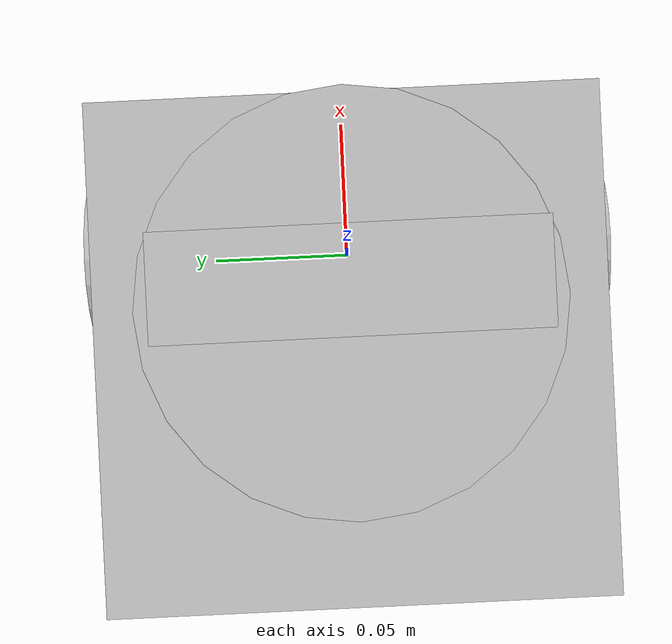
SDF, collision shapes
<?xml version='1.0'?>
<sdf version='1.7'>
  <model name='turtlebot3_realsense'>
    <link name='realsense2_camera_base_link'>
      <inertial>
        <pose>0.0106 0.0175 0.0125 0 -0 0</pose>
        <mass>0.072</mass>
        <inertia>
          <ixx>0.00388124</ixx>
          <ixy>0</ixy>
          <ixz>0</ixz>
          <iyy>0.00049894</iyy>
          <iyz>0</iyz>
          <izz>0.00387926</izz>
        </inertia>
      </inertial>
      <self_collide>0</self_collide>
      <enable_wind>0</enable_wind>
      <kinematic>0</kinematic>
      <sensor name='cameradepth' type='depth'>
        <camera name='camera'>
          <horizontal_fov>1.57</horizontal_fov>
          <image>
            <width>1280</width>
            <height>720</height>
          </image>
          <clip>
            <near>0.1</near>
            <far>100</far>
          </clip>
          <noise>
            <type>gaussian</type>
            <mean>0</mean>
            <stddev>0.1</stddev>
          </noise>
        </camera>
        <always_on>1</always_on>
        <update_rate>30</update_rate>
        <visualize>0</visualize>
      </sensor>
      <sensor name='cameracolor' type='camera'>
        <camera name='camera'>
          <horizontal_fov>1.57</horizontal_fov>
          <image>
            <width>1280</width>
            <height>720</height>
            <format>RGB_INT8</format>
          </image>
          <clip>
            <near>0.1</near>
            <far>100</far>
          </clip>
          <noise>
            <type>gaussian</type>
            <mean>0</mean>
            <stddev>0.007</stddev>
          </noise>
        </camera>
        <always_on>1</always_on>
        <update_rate>30</update_rate>
        <visualize>1</visualize>
      </sensor>
      <sensor name='cameraired1' type='camera'>
        <camera name='camera'>
          <horizontal_fov>1.57</horizontal_fov>
          <image>
            <width>1280</width>
            <height>720</height>
            <format>L_INT8</format>
          </image>
          <clip>
            <near>0.1</near>
            <far>100</far>
          </clip>
          <noise>
            <type>gaussian</type>
            <mean>0</mean>
            <stddev>0.05</stddev>
          </noise>
        </camera>
        <always_on>1</always_on>
        <update_rate>1</update_rate>
        <visualize>0</visualize>
      </sensor>
      <sensor name='cameraired2' type='camera'>
        <camera name='camera'>
          <horizontal_fov>1.57</horizontal_fov>
          <image>
            <width>1280</width>
            <height>720</height>
            <format>L_INT8</format>
          </image>
          <clip>
            <near>0.1</near>
            <far>100</far>
          </clip>
          <noise>
            <type>gaussian</type>
            <mean>0</mean>
            <stddev>0.05</stddev>
          </noise>
        </camera>
        <always_on>1</always_on>
        <update_rate>1</update_rate>
        <visualize>0</visualize>
      </sensor>
      <pose>-0.025589 -0 0.179177 -0 -0 -0</pose>
      <visual name='base_link_fixed_joint_lump__camera_link_visual'>
        <pose>0.0106 0 0.0125 0 -0 0</pose>
        <geometry>
          <box>
            <size>0.02505 0.09 0.025</size>
          </box>
        </geometry>
        <material>
          <shader type='pixel'/>
        </material>
        <transparency>0</transparency>
        <cast_shadows>1</cast_shadows>
      </visual>
      <collision name='base_link_fixed_joint_lump__camera_link_collision'>
        <laser_retro>0</laser_retro>
        <max_contacts>10</max_contacts>
        <pose>0.0106 0 0.0125 0 -0 0</pose>
        <geometry>
          <box>
            <size>0.02505 0.09 0.025</size>
          </box>
        </geometry>
        <surface>
          <friction>
            <ode>
              <mu>1</mu>
              <mu2>1</mu2>
              <fdir1>0 0 0</fdir1>
              <slip1>0</slip1>
              <slip2>0</slip2>
            </ode>
            <torsional>
              <coefficient>1</coefficient>
              <patch_radius>0</patch_radius>
              <surface_radius>0</surface_radius>
              <use_patch_radius>1</use_patch_radius>
              <ode>
                <slip>0</slip>
              </ode>
            </torsional>
          </friction>
          <bounce>
            <restitution_coefficient>0</restitution_coefficient>
            <threshold>1e+06</threshold>
          </bounce>
          <contact>
            <collide_without_contact>0</collide_without_contact>
            <collide_without_contact_bitmask>1</collide_without_contact_bitmask>
            <collide_bitmask>1</collide_bitmask>
            <ode>
              <soft_cfm>0</soft_cfm>
              <soft_erp>0.2</soft_erp>
              <kp>1e+13</kp>
              <kd>1</kd>
              <max_vel>0.01</max_vel>
              <min_depth>0</min_depth>
            </ode>
            <bullet>
              <split_impulse>1</split_impulse>
              <split_impulse_penetration_threshold>-0.01</split_impulse_penetration_threshold>
              <soft_cfm>0</soft_cfm>
              <soft_erp>0.2</soft_erp>
              <kp>1e+13</kp>
              <kd>1</kd>
            </bullet>
          </contact>
        </surface>
      </collision>
    </link>
    <link name='base_footprint'>
      <self_collide>0</self_collide>
      <inertial>
        <pose>0 0 0 0 -0 0</pose>
        <inertia>
          <ixx>1</ixx>
          <ixy>0</ixy>
          <ixz>0</ixz>
          <iyy>1</iyy>
          <iyz>0</iyz>
          <izz>1</izz>
        </inertia>
        <mass>1</mass>
      </inertial>
      <enable_wind>0</enable_wind>
      <kinematic>0</kinematic>
      <pose>0 0 0 -0 -0 -0</pose>
    </link>
    <link name='base_link'>
      <inertial>
        <pose>-0.032 0 0.07 0 -0 0</pose>
        <inertia>
          <ixx>0.723974</ixx>
          <ixy>4.6864e-10</ixy>
          <ixz>-1.09526e-08</ixz>
          <iyy>0.723974</iyy>
          <iyz>2.85826e-09</iyz>
          <izz>0.65305</izz>
        </inertia>
        <mass>0.825735</mass>
      </inertial>
      <self_collide>0</self_collide>
      <enable_wind>0</enable_wind>
      <kinematic>0</kinematic>
      <pose>0 0 0 -0 -0 -0</pose>
      <visual name='base_visual'>
        <pose>-0.032 0 0 0 -0 0</pose>
        <geometry>
          <mesh>
            <uri>model://turtlebot3_burger/meshes/burger_base.dae</uri>
            <scale>0.001 0.001 0.001</scale>
          </mesh>
        </geometry>
        <material>
          <shader type='pixel'/>
        </material>
        <transparency>0</transparency>
        <cast_shadows>1</cast_shadows>
      </visual>
      <collision name='base_collision'>
        <laser_retro>0</laser_retro>
        <max_contacts>10</max_contacts>
        <pose>-0.032 0 0.07 0 -0 0</pose>
        <geometry>
          <box>
            <size>0.14 0.14 0.14</size>
          </box>
        </geometry>
        <surface>
          <friction>
            <ode>
              <mu>1</mu>
              <mu2>1</mu2>
              <fdir1>0 0 0</fdir1>
              <slip1>0</slip1>
              <slip2>0</slip2>
            </ode>
            <torsional>
              <coefficient>1</coefficient>
              <patch_radius>0</patch_radius>
              <surface_radius>0</surface_radius>
              <use_patch_radius>1</use_patch_radius>
              <ode>
                <slip>0</slip>
              </ode>
            </torsional>
          </friction>
          <bounce>
            <restitution_coefficient>0</restitution_coefficient>
            <threshold>1e+06</threshold>
          </bounce>
          <contact>
            <collide_without_contact>0</collide_without_contact>
            <collide_without_contact_bitmask>1</collide_without_contact_bitmask>
            <collide_bitmask>1</collide_bitmask>
            <ode>
              <soft_cfm>0</soft_cfm>
              <soft_erp>0.2</soft_erp>
              <kp>1e+13</kp>
              <kd>1</kd>
              <max_vel>0.01</max_vel>
              <min_depth>0</min_depth>
            </ode>
            <bullet>
              <split_impulse>1</split_impulse>
              <split_impulse_penetration_threshold>-0.01</split_impulse_penetration_threshold>
              <soft_cfm>0</soft_cfm>
              <soft_erp>0.2</soft_erp>
              <kp>1e+13</kp>
              <kd>1</kd>
            </bullet>
          </contact>
        </surface>
      </collision>
    </link>
    <link name='base_scan'>
      <inertial>
        <pose>-0.02 0 0.161 0 -0 0</pose>
        <inertia>
          <ixx>0.001</ixx>
          <ixy>0</ixy>
          <ixz>0</ixz>
          <iyy>0.001</iyy>
          <iyz>0</iyz>
          <izz>0.001</izz>
        </inertia>
        <mass>0.114</mass>
      </inertial>
      <sensor name='hls_lfcd_lds' type='ray'>
        <always_on>1</always_on>
        <visualize>1</visualize>
        <pose>-0.032 0 0.171 0 -0 0</pose>
        <update_rate>5</update_rate>
        <ray>
          <scan>
            <horizontal>
              <samples>360</samples>
              <resolution>1</resolution>
              <min_angle>0</min_angle>
              <max_angle>6.28</max_angle>
            </horizontal>
            <vertical>
              <samples>1</samples>
              <min_angle>0</min_angle>
              <max_angle>0</max_angle>
            </vertical>
          </scan>
          <range>
            <min>0.12</min>
            <max>3.5</max>
            <resolution>0.015</resolution>
          </range>
          <noise>
            <type>gaussian</type>
            <mean>0</mean>
            <stddev>0.01</stddev>
          </noise>
        </ray>
        <plugin name='turtlebot3_laserscan' filename='libgazebo_ros_ray_sensor.so'>
          <ros>
            <remapping>~/out:=scan</remapping>
          </ros>
          <output_type>sensor_msgs/LaserScan</output_type>
          <frame_name>base_scan</frame_name>
        </plugin>
      </sensor>
      <self_collide>0</self_collide>
      <enable_wind>0</enable_wind>
      <kinematic>0</kinematic>
      <pose>0 0 0 -0 -0 -0</pose>
      <visual name='lidar_sensor_visual'>
        <pose>-0.032 0 0.171 0 -0 0</pose>
        <geometry>
          <mesh>
            <uri>model://turtlebot3_burger/meshes/lds.dae</uri>
            <scale>0.001 0.001 0.001</scale>
          </mesh>
        </geometry>
        <material>
          <shader type='pixel'/>
        </material>
        <transparency>0</transparency>
        <cast_shadows>1</cast_shadows>
      </visual>
      <collision name='lidar_sensor_collision'>
        <laser_retro>0</laser_retro>
        <max_contacts>10</max_contacts>
        <pose>-0.02 0 0.161 0 -0 0</pose>
        <geometry>
          <cylinder>
            <radius>0.0508</radius>
            <length>0.055</length>
          </cylinder>
        </geometry>
        <surface>
          <friction>
            <ode>
              <mu>1</mu>
              <mu2>1</mu2>
              <fdir1>0 0 0</fdir1>
              <slip1>0</slip1>
              <slip2>0</slip2>
            </ode>
            <torsional>
              <coefficient>1</coefficient>
              <patch_radius>0</patch_radius>
              <surface_radius>0</surface_radius>
              <use_patch_radius>1</use_patch_radius>
              <ode>
                <slip>0</slip>
              </ode>
            </torsional>
          </friction>
          <bounce>
            <restitution_coefficient>0</restitution_coefficient>
            <threshold>1e+06</threshold>
          </bounce>
          <contact>
            <collide_without_contact>0</collide_without_contact>
            <collide_without_contact_bitmask>1</collide_without_contact_bitmask>
            <collide_bitmask>1</collide_bitmask>
            <ode>
              <soft_cfm>0</soft_cfm>
              <soft_erp>0.2</soft_erp>
              <kp>1e+13</kp>
              <kd>1</kd>
              <max_vel>0.01</max_vel>
              <min_depth>0</min_depth>
            </ode>
            <bullet>
              <split_impulse>1</split_impulse>
              <split_impulse_penetration_threshold>-0.01</split_impulse_penetration_threshold>
              <soft_cfm>0</soft_cfm>
              <soft_erp>0.2</soft_erp>
              <kp>1e+13</kp>
              <kd>1</kd>
            </bullet>
          </contact>
        </surface>
      </collision>
    </link>
    <link name='caster_back_link'>
      <pose>-0.081 0 -0.004 -1.57 -0 -0</pose>
      <inertial>
        <mass>0.005</mass>
        <inertia>
          <ixx>0.001</ixx>
          <ixy>0</ixy>
          <ixz>0</ixz>
          <iyy>0.001</iyy>
          <iyz>0</iyz>
          <izz>0.001</izz>
        </inertia>
        <pose>0 0 0 0 -0 0</pose>
      </inertial>
      <self_collide>0</self_collide>
      <enable_wind>0</enable_wind>
      <kinematic>0</kinematic>
      <collision name='collision'>
        <laser_retro>0</laser_retro>
        <max_contacts>10</max_contacts>
        <pose>0 0 0 0 -0 0</pose>
        <geometry>
          <sphere>
            <radius>0.005</radius>
          </sphere>
        </geometry>
        <surface>
          <friction>
            <ode>
              <mu>1</mu>
              <mu2>1</mu2>
              <fdir1>0 0 0</fdir1>
              <slip1>0</slip1>
              <slip2>0</slip2>
            </ode>
            <torsional>
              <coefficient>1</coefficient>
              <patch_radius>0</patch_radius>
              <surface_radius>0</surface_radius>
              <use_patch_radius>1</use_patch_radius>
              <ode>
                <slip>0</slip>
              </ode>
            </torsional>
          </friction>
          <bounce>
            <restitution_coefficient>0</restitution_coefficient>
            <threshold>1e+06</threshold>
          </bounce>
          <contact>
            <collide_without_contact>0</collide_without_contact>
            <collide_without_contact_bitmask>1</collide_without_contact_bitmask>
            <collide_bitmask>1</collide_bitmask>
            <ode>
              <soft_cfm>0</soft_cfm>
              <soft_erp>0.2</soft_erp>
              <kp>100000</kp>
              <kd>1</kd>
              <max_vel>0.01</max_vel>
              <min_depth>0.001</min_depth>
            </ode>
            <bullet>
              <split_impulse>1</split_impulse>
              <split_impulse_penetration_threshold>-0.01</split_impulse_penetration_threshold>
              <soft_cfm>0</soft_cfm>
              <soft_erp>0.2</soft_erp>
              <kp>100000</kp>
              <kd>1</kd>
            </bullet>
          </contact>
        </surface>
      </collision>
    </link>
    <link name='imu_link'>
      <sensor name='tb3_imu' type='imu'>
        <always_on>1</always_on>
        <update_rate>200</update_rate>
        <imu>
          <angular_velocity>
            <x>
              <noise type='gaussian'>
                <mean>0</mean>
                <stddev>0.0002</stddev>
              </noise>
            </x>
            <y>
              <noise type='gaussian'>
                <mean>0</mean>
                <stddev>0.0002</stddev>
              </noise>
            </y>
            <z>
              <noise type='gaussian'>
                <mean>0</mean>
                <stddev>0.0002</stddev>
              </noise>
            </z>
          </angular_velocity>
          <linear_acceleration>
            <x>
              <noise type='gaussian'>
                <mean>0</mean>
                <stddev>0.017</stddev>
              </noise>
            </x>
            <y>
              <noise type='gaussian'>
                <mean>0</mean>
                <stddev>0.017</stddev>
              </noise>
            </y>
            <z>
              <noise type='gaussian'>
                <mean>0</mean>
                <stddev>0.017</stddev>
              </noise>
            </z>
          </linear_acceleration>
          <angular_velocity/>
          <linear_acceleration/>
          <angular_velocity/>
          <linear_acceleration/>
        </imu>
        <plugin name='turtlebot3_imu' filename='libgazebo_ros_imu_sensor.so'>
          <ros>
            <remapping>~/out:=imu</remapping>
          </ros>
        </plugin>
      </sensor>
      <self_collide>0</self_collide>
      <inertial>
        <pose>0 0 0 0 -0 0</pose>
        <inertia>
          <ixx>1</ixx>
          <ixy>0</ixy>
          <ixz>0</ixz>
          <iyy>1</iyy>
          <iyz>0</iyz>
          <izz>1</izz>
        </inertia>
        <mass>1</mass>
      </inertial>
      <enable_wind>0</enable_wind>
      <kinematic>0</kinematic>
      <pose>0 0 0 -0 -0 -0</pose>
    </link>
    <link name='wheel_left_link'>
      <inertial>
        <pose>0 0.08 0.023 -1.57 0 0</pose>
        <inertia>
          <ixx>0.00181582</ixx>
          <ixy>-9.3392e-12</ixy>
          <ixz>1.04909e-11</ixz>
          <iyy>0.00329221</iyy>
          <iyz>5.75694e-11</iyz>
          <izz>0.00181582</izz>
        </inertia>
        <mass>0.0284989</mass>
      </inertial>
      <self_collide>0</self_collide>
      <enable_wind>0</enable_wind>
      <kinematic>0</kinematic>
      <pose>0 0 0 -0 -0 -0</pose>
      <visual name='wheel_left_visual'>
        <pose>0 0.08 0.023 0 -0 0</pose>
        <geometry>
          <mesh>
            <uri>model://turtlebot3_burger/meshes/tire.dae</uri>
            <scale>0.001 0.001 0.001</scale>
          </mesh>
        </geometry>
        <material>
          <shader type='pixel'/>
        </material>
        <transparency>0</transparency>
        <cast_shadows>1</cast_shadows>
      </visual>
      <collision name='wheel_left_collision'>
        <laser_retro>0</laser_retro>
        <max_contacts>10</max_contacts>
        <pose>0 0.08 0.023 -1.57 0 0</pose>
        <geometry>
          <cylinder>
            <radius>0.033</radius>
            <length>0.018</length>
          </cylinder>
        </geometry>
        <surface>
          <friction>
            <ode>
              <mu>100000</mu>
              <mu2>100000</mu2>
              <fdir1>0 0 0</fdir1>
              <slip1>0</slip1>
              <slip2>0</slip2>
            </ode>
            <torsional>
              <coefficient>1</coefficient>
              <patch_radius>0</patch_radius>
              <surface_radius>0</surface_radius>
              <use_patch_radius>1</use_patch_radius>
              <ode>
                <slip>0</slip>
              </ode>
            </torsional>
          </friction>
          <bounce>
            <restitution_coefficient>0</restitution_coefficient>
            <threshold>1e+06</threshold>
          </bounce>
          <contact>
            <collide_without_contact>0</collide_without_contact>
            <collide_without_contact_bitmask>1</collide_without_contact_bitmask>
            <collide_bitmask>1</collide_bitmask>
            <ode>
              <soft_cfm>0</soft_cfm>
              <soft_erp>0.2</soft_erp>
              <kp>100000</kp>
              <kd>1</kd>
              <max_vel>0.01</max_vel>
              <min_depth>0.001</min_depth>
            </ode>
            <bullet>
              <split_impulse>1</split_impulse>
              <split_impulse_penetration_threshold>-0.01</split_impulse_penetration_threshold>
              <soft_cfm>0</soft_cfm>
              <soft_erp>0.2</soft_erp>
              <kp>100000</kp>
              <kd>1</kd>
            </bullet>
          </contact>
        </surface>
      </collision>
    </link>
    <link name='wheel_right_link'>
      <inertial>
        <pose>0 -0.08 0.023 -1.57 0 0</pose>
        <inertia>
          <ixx>0.00181582</ixx>
          <ixy>-9.3392e-12</ixy>
          <ixz>1.04909e-11</ixz>
          <iyy>0.00329221</iyy>
          <iyz>5.75694e-11</iyz>
          <izz>0.00181582</izz>
        </inertia>
        <mass>0.0284989</mass>
      </inertial>
      <self_collide>0</self_collide>
      <enable_wind>0</enable_wind>
      <kinematic>0</kinematic>
      <pose>0 0 0 -0 -0 -0</pose>
      <visual name='wheel_right_visual'>
        <pose>0 -0.08 0.023 0 -0 0</pose>
        <geometry>
          <mesh>
            <uri>model://turtlebot3_burger/meshes/tire.dae</uri>
            <scale>0.001 0.001 0.001</scale>
          </mesh>
        </geometry>
        <material>
          <shader type='pixel'/>
        </material>
        <transparency>0</transparency>
        <cast_shadows>1</cast_shadows>
      </visual>
      <collision name='wheel_right_collision'>
        <laser_retro>0</laser_retro>
        <max_contacts>10</max_contacts>
        <pose>0 -0.08 0.023 -1.57 0 0</pose>
        <geometry>
          <cylinder>
            <radius>0.033</radius>
            <length>0.018</length>
          </cylinder>
        </geometry>
        <surface>
          <friction>
            <ode>
              <mu>100000</mu>
              <mu2>100000</mu2>
              <fdir1>0 0 0</fdir1>
              <slip1>0</slip1>
              <slip2>0</slip2>
            </ode>
            <torsional>
              <coefficient>1</coefficient>
              <patch_radius>0</patch_radius>
              <surface_radius>0</surface_radius>
              <use_patch_radius>1</use_patch_radius>
              <ode>
                <slip>0</slip>
              </ode>
            </torsional>
          </friction>
          <bounce>
            <restitution_coefficient>0</restitution_coefficient>
            <threshold>1e+06</threshold>
          </bounce>
          <contact>
            <collide_without_contact>0</collide_without_contact>
            <collide_without_contact_bitmask>1</collide_without_contact_bitmask>
            <collide_bitmask>1</collide_bitmask>
            <ode>
              <soft_cfm>0</soft_cfm>
              <soft_erp>0.2</soft_erp>
              <kp>100000</kp>
              <kd>1</kd>
              <max_vel>0.01</max_vel>
              <min_depth>0.001</min_depth>
            </ode>
            <bullet>
              <split_impulse>1</split_impulse>
              <split_impulse_penetration_threshold>-0.01</split_impulse_penetration_threshold>
              <soft_cfm>0</soft_cfm>
              <soft_erp>0.2</soft_erp>
              <kp>100000</kp>
              <kd>1</kd>
            </bullet>
          </contact>
        </surface>
      </collision>
    </link>
    <joint name='base_joint' type='fixed'>
      <parent>base_footprint</parent>
      <child>base_link</child>
      <pose>0 0 0.01 0 -0 0</pose>
      <physics>
        <ode>
          <limit>
            <cfm>0</cfm>
            <erp>0.2</erp>
          </limit>
          <suspension>
            <cfm>0</cfm>
            <erp>0.2</erp>
          </suspension>
        </ode>
      </physics>
    </joint>
    <joint name='caster_back_joint' type='ball'>
      <parent>base_link</parent>
      <child>caster_back_link</child>
      <pose>0 0 0 0 -0 0</pose>
      <physics>
        <ode>
          <limit>
            <cfm>0</cfm>
            <erp>0.2</erp>
          </limit>
          <suspension>
            <cfm>0</cfm>
            <erp>0.2</erp>
          </suspension>
        </ode>
      </physics>
    </joint>
    <joint name='imu_joint' type='fixed'>
      <parent>base_link</parent>
      <child>imu_link</child>
      <pose>-0.032 0 0.068 0 -0 0</pose>
      <physics>
        <ode>
          <limit>
            <cfm>0</cfm>
            <erp>0.2</erp>
          </limit>
          <suspension>
            <cfm>0</cfm>
            <erp>0.2</erp>
          </suspension>
        </ode>
      </physics>
    </joint>
    <joint name='lidar_joint' type='fixed'>
      <parent>base_link</parent>
      <child>base_scan</child>
      <pose>-0.032 0 0.171 0 -0 0</pose>
      <physics>
        <ode>
          <limit>
            <cfm>0</cfm>
            <erp>0.2</erp>
          </limit>
          <suspension>
            <cfm>0</cfm>
            <erp>0.2</erp>
          </suspension>
        </ode>
      </physics>
    </joint>
    <joint name='realsense_joint' type='fixed'>
      <parent>base_scan</parent>
      <child>realsense2_camera_base_link</child>
      <pose>0 0 0 0 -0 0</pose>
      <physics>
        <ode>
          <limit>
            <cfm>0</cfm>
            <erp>0.2</erp>
          </limit>
          <suspension>
            <cfm>0</cfm>
            <erp>0.2</erp>
          </suspension>
        </ode>
      </physics>
    </joint>
    <joint name='wheel_left_joint' type='revolute'>
      <parent>base_link</parent>
      <child>wheel_left_link</child>
      <pose>0 0.08 0.023 -1.57 0 0</pose>
      <axis>
        <xyz>0 0 1</xyz>
        <limit>
          <lower>-1e+16</lower>
          <upper>1e+16</upper>
          <effort>-1</effort>
          <velocity>-1</velocity>
        </limit>
        <dynamics>
          <spring_reference>0</spring_reference>
          <spring_stiffness>0</spring_stiffness>
          <damping>0</damping>
          <friction>0</friction>
        </dynamics>
      </axis>
      <physics>
        <ode>
          <limit>
            <cfm>0</cfm>
            <erp>0.2</erp>
          </limit>
          <suspension>
            <cfm>0</cfm>
            <erp>0.2</erp>
          </suspension>
        </ode>
      </physics>
    </joint>
    <joint name='wheel_right_joint' type='revolute'>
      <parent>base_link</parent>
      <child>wheel_right_link</child>
      <pose>0 -0.08 0.023 -1.57 0 0</pose>
      <axis>
        <xyz>0 0 1</xyz>
        <limit>
          <lower>-1e+16</lower>
          <upper>1e+16</upper>
          <effort>-1</effort>
          <velocity>-1</velocity>
        </limit>
        <dynamics>
          <spring_reference>0</spring_reference>
          <spring_stiffness>0</spring_stiffness>
          <damping>0</damping>
          <friction>0</friction>
        </dynamics>
      </axis>
      <physics>
        <ode>
          <limit>
            <cfm>0</cfm>
            <erp>0.2</erp>
          </limit>
          <suspension>
            <cfm>0</cfm>
            <erp>0.2</erp>
          </suspension>
        </ode>
      </physics>
    </joint>
    <static>0</static>
    <allow_auto_disable>1</allow_auto_disable>
    <plugin name='realsense_gazebo_plugin' filename='librealsense_gazebo_plugin.so'>
      <prefix>camera</prefix>
      <depthUpdateRate>30.0</depthUpdateRate>
      <colorUpdateRate>30.0</colorUpdateRate>
      <infraredUpdateRate>1.0</infraredUpdateRate>
      <depthTopicName>aligned_depth_to_color/image_raw</depthTopicName>
      <depthCameraInfoTopicName>depth/camera_info</depthCameraInfoTopicName>
      <colorTopicName>color/image_raw</colorTopicName>
      <colorCameraInfoTopicName>color/camera_info</colorCameraInfoTopicName>
      <infrared1TopicName>infra1/image_raw</infrared1TopicName>
      <infrared1CameraInfoTopicName>infra1/camera_info</infrared1CameraInfoTopicName>
      <infrared2TopicName>infra2/image_raw</infrared2TopicName>
      <infrared2CameraInfoTopicName>infra2/camera_info</infrared2CameraInfoTopicName>
      <colorOpticalframeName>camera_color_optical_frame</colorOpticalframeName>
      <depthOpticalframeName>camera_depth_optical_frame</depthOpticalframeName>
      <infrared1OpticalframeName>camera_left_ir_optical_frame</infrared1OpticalframeName>
      <infrared2OpticalframeName>camera_right_ir_optical_frame</infrared2OpticalframeName>
      <rangeMinDepth>0.3</rangeMinDepth>
      <rangeMaxDepth>3.0</rangeMaxDepth>
      <pointCloud>1</pointCloud>
      <pointCloudTopicName>depth/color/points</pointCloudTopicName>
      <pointCloudCutoff>0.3</pointCloudCutoff>
    </plugin>
    <plugin name='turtlebot3_diff_drive' filename='libgazebo_ros_diff_drive.so'>
      <ros/>
      <update_rate>30</update_rate>
      <left_joint>wheel_left_joint</left_joint>
      <right_joint>wheel_right_joint</right_joint>
      <wheel_separation>0.160</wheel_separation>
      <wheel_diameter>0.066</wheel_diameter>
      <max_wheel_torque>20</max_wheel_torque>
      <max_wheel_acceleration>1.0</max_wheel_acceleration>
      <command_topic>cmd_vel</command_topic>
      <publish_odom>1</publish_odom>
      <publish_odom_tf>1</publish_odom_tf>
      <publish_wheel_tf>0</publish_wheel_tf>
      <odometry_topic>odom</odometry_topic>
      <odometry_frame>odom</odometry_frame>
      <robot_base_frame>base_footprint</robot_base_frame>
    </plugin>
    <plugin name='turtlebot3_joint_state' filename='libgazebo_ros_joint_state_publisher.so'>
      <ros>
        <remapping>~/out:=joint_states</remapping>
      </ros>
      <update_rate>30</update_rate>
      <joint_name>wheel_left_joint</joint_name>
      <joint_name>wheel_right_joint</joint_name>
    </plugin>
  </model>
</sdf>
